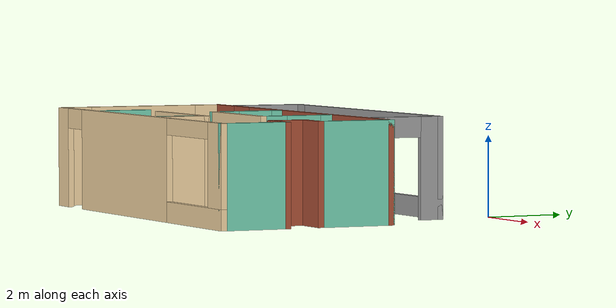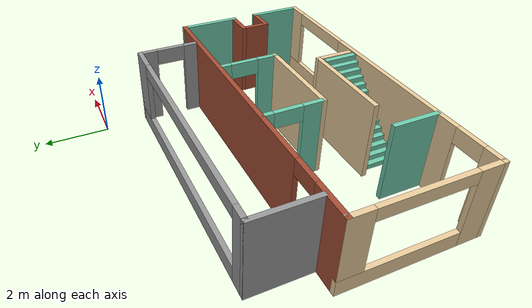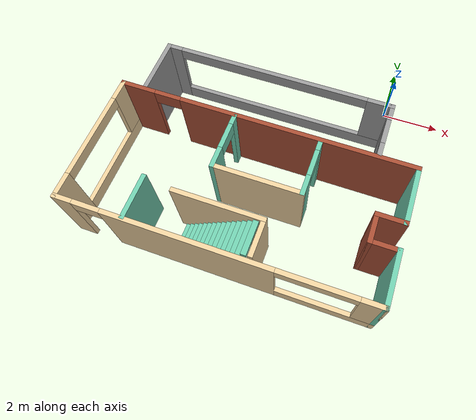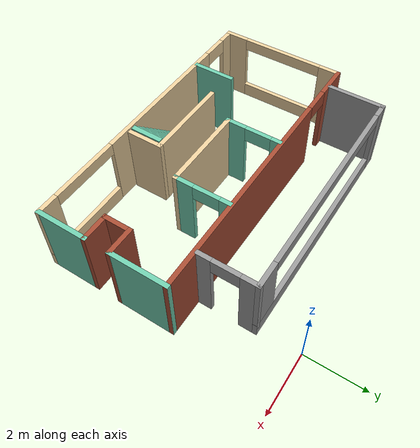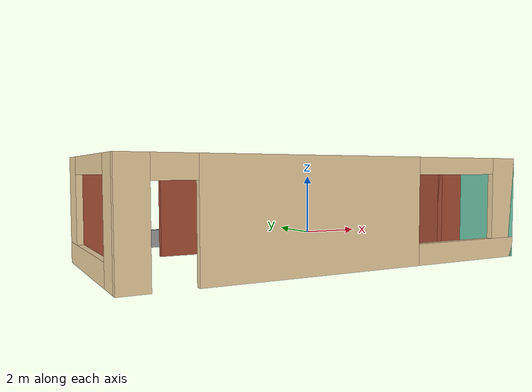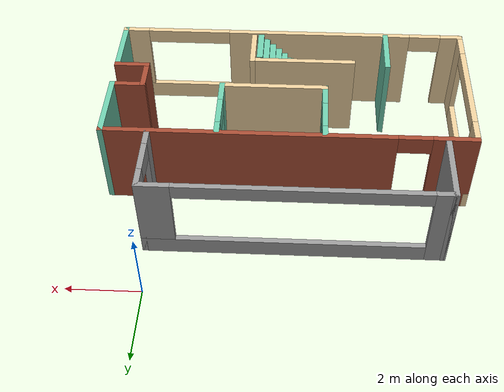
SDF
<?xml version='1.0'?>
<sdf version='1.6'>
  <model name='Untitled'>
    <pose frame=''>-3.57326 -4.56887 0 0 -0 0</pose>
    <link name='Stairs_0'>
      <visual name='Stairs_0_Visual_0'>
        <pose frame=''>-1.54693 -2.49688 0.083333 0 -0 1.5708</pose>
        <geometry>
          <box>
            <size>1.06865 0.174491 0.166667</size>
          </box>
        </geometry>
        <material>
          <script>
            <uri>file://media/materials/scripts/gazebo.material</uri>
            <name>Gazebo/Grey</name>
          </script>
          <ambient>0.435294 0.796078 0.67451 1</ambient>
        </material>
        <meta>
          <layer>0</layer>
        </meta>
      </visual>
      <collision name='Stairs_0_Collision_0'>
        <geometry>
          <box>
            <size>1.06865 0.174491 0.166667</size>
          </box>
        </geometry>
        <pose frame=''>-1.54693 -2.49688 0.083333 0 -0 1.5708</pose>
      </collision>
      <visual name='Stairs_0_Visual_1'>
        <pose frame=''>-1.37244 -2.49688 0.25 0 -0 1.5708</pose>
        <geometry>
          <box>
            <size>1.06865 0.174491 0.166667</size>
          </box>
        </geometry>
        <material>
          <script>
            <uri>file://media/materials/scripts/gazebo.material</uri>
            <name>Gazebo/Grey</name>
          </script>
          <ambient>0.435294 0.796078 0.67451 1</ambient>
        </material>
        <meta>
          <layer>0</layer>
        </meta>
      </visual>
      <collision name='Stairs_0_Collision_1'>
        <geometry>
          <box>
            <size>1.06865 0.174491 0.166667</size>
          </box>
        </geometry>
        <pose frame=''>-1.37244 -2.49688 0.25 0 -0 1.5708</pose>
      </collision>
      <visual name='Stairs_0_Visual_2'>
        <pose frame=''>-1.19795 -2.49688 0.416667 0 -0 1.5708</pose>
        <geometry>
          <box>
            <size>1.06865 0.174491 0.166667</size>
          </box>
        </geometry>
        <material>
          <script>
            <uri>file://media/materials/scripts/gazebo.material</uri>
            <name>Gazebo/Grey</name>
          </script>
          <ambient>0.435294 0.796078 0.67451 1</ambient>
        </material>
        <meta>
          <layer>0</layer>
        </meta>
      </visual>
      <collision name='Stairs_0_Collision_2'>
        <geometry>
          <box>
            <size>1.06865 0.174491 0.166667</size>
          </box>
        </geometry>
        <pose frame=''>-1.19795 -2.49688 0.416667 0 -0 1.5708</pose>
      </collision>
      <visual name='Stairs_0_Visual_3'>
        <pose frame=''>-1.02346 -2.49688 0.583333 0 -0 1.5708</pose>
        <geometry>
          <box>
            <size>1.06865 0.174491 0.166667</size>
          </box>
        </geometry>
        <material>
          <script>
            <uri>file://media/materials/scripts/gazebo.material</uri>
            <name>Gazebo/Grey</name>
          </script>
          <ambient>0.435294 0.796078 0.67451 1</ambient>
        </material>
        <meta>
          <layer>0</layer>
        </meta>
      </visual>
      <collision name='Stairs_0_Collision_3'>
        <geometry>
          <box>
            <size>1.06865 0.174491 0.166667</size>
          </box>
        </geometry>
        <pose frame=''>-1.02346 -2.49688 0.583333 0 -0 1.5708</pose>
      </collision>
      <visual name='Stairs_0_Visual_4'>
        <pose frame=''>-0.848965 -2.49688 0.75 0 -0 1.5708</pose>
        <geometry>
          <box>
            <size>1.06865 0.174491 0.166667</size>
          </box>
        </geometry>
        <material>
          <script>
            <uri>file://media/materials/scripts/gazebo.material</uri>
            <name>Gazebo/Grey</name>
          </script>
          <ambient>0.435294 0.796078 0.67451 1</ambient>
        </material>
        <meta>
          <layer>0</layer>
        </meta>
      </visual>
      <collision name='Stairs_0_Collision_4'>
        <geometry>
          <box>
            <size>1.06865 0.174491 0.166667</size>
          </box>
        </geometry>
        <pose frame=''>-0.848965 -2.49688 0.75 0 -0 1.5708</pose>
      </collision>
      <visual name='Stairs_0_Visual_5'>
        <pose frame=''>-0.674474 -2.49688 0.916667 0 -0 1.5708</pose>
        <geometry>
          <box>
            <size>1.06865 0.174491 0.166667</size>
          </box>
        </geometry>
        <material>
          <script>
            <uri>file://media/materials/scripts/gazebo.material</uri>
            <name>Gazebo/Grey</name>
          </script>
          <ambient>0.435294 0.796078 0.67451 1</ambient>
        </material>
        <meta>
          <layer>0</layer>
        </meta>
      </visual>
      <collision name='Stairs_0_Collision_5'>
        <geometry>
          <box>
            <size>1.06865 0.174491 0.166667</size>
          </box>
        </geometry>
        <pose frame=''>-0.674474 -2.49688 0.916667 0 -0 1.5708</pose>
      </collision>
      <visual name='Stairs_0_Visual_6'>
        <pose frame=''>-0.499983 -2.49688 1.08333 0 -0 1.5708</pose>
        <geometry>
          <box>
            <size>1.06865 0.174491 0.166667</size>
          </box>
        </geometry>
        <material>
          <script>
            <uri>file://media/materials/scripts/gazebo.material</uri>
            <name>Gazebo/Grey</name>
          </script>
          <ambient>0.435294 0.796078 0.67451 1</ambient>
        </material>
        <meta>
          <layer>0</layer>
        </meta>
      </visual>
      <collision name='Stairs_0_Collision_6'>
        <geometry>
          <box>
            <size>1.06865 0.174491 0.166667</size>
          </box>
        </geometry>
        <pose frame=''>-0.499983 -2.49688 1.08333 0 -0 1.5708</pose>
      </collision>
      <visual name='Stairs_0_Visual_7'>
        <pose frame=''>-0.325492 -2.49688 1.25 0 -0 1.5708</pose>
        <geometry>
          <box>
            <size>1.06865 0.174491 0.166667</size>
          </box>
        </geometry>
        <material>
          <script>
            <uri>file://media/materials/scripts/gazebo.material</uri>
            <name>Gazebo/Grey</name>
          </script>
          <ambient>0.435294 0.796078 0.67451 1</ambient>
        </material>
        <meta>
          <layer>0</layer>
        </meta>
      </visual>
      <collision name='Stairs_0_Collision_7'>
        <geometry>
          <box>
            <size>1.06865 0.174491 0.166667</size>
          </box>
        </geometry>
        <pose frame=''>-0.325492 -2.49688 1.25 0 -0 1.5708</pose>
      </collision>
      <visual name='Stairs_0_Visual_8'>
        <pose frame=''>-0.151001 -2.49688 1.41667 0 -0 1.5708</pose>
        <geometry>
          <box>
            <size>1.06865 0.174491 0.166667</size>
          </box>
        </geometry>
        <material>
          <script>
            <uri>file://media/materials/scripts/gazebo.material</uri>
            <name>Gazebo/Grey</name>
          </script>
          <ambient>0.435294 0.796078 0.67451 1</ambient>
        </material>
        <meta>
          <layer>0</layer>
        </meta>
      </visual>
      <collision name='Stairs_0_Collision_8'>
        <geometry>
          <box>
            <size>1.06865 0.174491 0.166667</size>
          </box>
        </geometry>
        <pose frame=''>-0.151001 -2.49688 1.41667 0 -0 1.5708</pose>
      </collision>
      <visual name='Stairs_0_Visual_9'>
        <pose frame=''>0.02349 -2.49688 1.58333 0 -0 1.5708</pose>
        <geometry>
          <box>
            <size>1.06865 0.174491 0.166667</size>
          </box>
        </geometry>
        <material>
          <script>
            <uri>file://media/materials/scripts/gazebo.material</uri>
            <name>Gazebo/Grey</name>
          </script>
          <ambient>0.435294 0.796078 0.67451 1</ambient>
        </material>
        <meta>
          <layer>0</layer>
        </meta>
      </visual>
      <collision name='Stairs_0_Collision_9'>
        <geometry>
          <box>
            <size>1.06865 0.174491 0.166667</size>
          </box>
        </geometry>
        <pose frame=''>0.02349 -2.49688 1.58333 0 -0 1.5708</pose>
      </collision>
      <visual name='Stairs_0_Visual_10'>
        <pose frame=''>0.197981 -2.49688 1.75 0 -0 1.5708</pose>
        <geometry>
          <box>
            <size>1.06865 0.174491 0.166667</size>
          </box>
        </geometry>
        <material>
          <script>
            <uri>file://media/materials/scripts/gazebo.material</uri>
            <name>Gazebo/Grey</name>
          </script>
          <ambient>0.435294 0.796078 0.67451 1</ambient>
        </material>
        <meta>
          <layer>0</layer>
        </meta>
      </visual>
      <collision name='Stairs_0_Collision_10'>
        <geometry>
          <box>
            <size>1.06865 0.174491 0.166667</size>
          </box>
        </geometry>
        <pose frame=''>0.197981 -2.49688 1.75 0 -0 1.5708</pose>
      </collision>
      <visual name='Stairs_0_Visual_11'>
        <pose frame=''>0.372472 -2.49688 1.91667 0 -0 1.5708</pose>
        <geometry>
          <box>
            <size>1.06865 0.174491 0.166667</size>
          </box>
        </geometry>
        <material>
          <script>
            <uri>file://media/materials/scripts/gazebo.material</uri>
            <name>Gazebo/Grey</name>
          </script>
          <ambient>0.435294 0.796078 0.67451 1</ambient>
        </material>
        <meta>
          <layer>0</layer>
        </meta>
      </visual>
      <collision name='Stairs_0_Collision_11'>
        <geometry>
          <box>
            <size>1.06865 0.174491 0.166667</size>
          </box>
        </geometry>
        <pose frame=''>0.372472 -2.49688 1.91667 0 -0 1.5708</pose>
      </collision>
      <visual name='Stairs_0_Visual_12'>
        <pose frame=''>0.546963 -2.49688 2.08333 0 -0 1.5708</pose>
        <geometry>
          <box>
            <size>1.06865 0.174491 0.166667</size>
          </box>
        </geometry>
        <material>
          <script>
            <uri>file://media/materials/scripts/gazebo.material</uri>
            <name>Gazebo/Grey</name>
          </script>
          <ambient>0.435294 0.796078 0.67451 1</ambient>
        </material>
        <meta>
          <layer>0</layer>
        </meta>
      </visual>
      <collision name='Stairs_0_Collision_12'>
        <geometry>
          <box>
            <size>1.06865 0.174491 0.166667</size>
          </box>
        </geometry>
        <pose frame=''>0.546963 -2.49688 2.08333 0 -0 1.5708</pose>
      </collision>
      <visual name='Stairs_0_Visual_13'>
        <pose frame=''>0.721454 -2.49688 2.25 0 -0 1.5708</pose>
        <geometry>
          <box>
            <size>1.06865 0.174491 0.166667</size>
          </box>
        </geometry>
        <material>
          <script>
            <uri>file://media/materials/scripts/gazebo.material</uri>
            <name>Gazebo/Grey</name>
          </script>
          <ambient>0.435294 0.796078 0.67451 1</ambient>
        </material>
        <meta>
          <layer>0</layer>
        </meta>
      </visual>
      <collision name='Stairs_0_Collision_13'>
        <geometry>
          <box>
            <size>1.06865 0.174491 0.166667</size>
          </box>
        </geometry>
        <pose frame=''>0.721454 -2.49688 2.25 0 -0 1.5708</pose>
      </collision>
      <visual name='Stairs_0_Visual_14'>
        <pose frame=''>0.895945 -2.49688 2.41667 0 -0 1.5708</pose>
        <geometry>
          <box>
            <size>1.06865 0.174491 0.166667</size>
          </box>
        </geometry>
        <material>
          <script>
            <uri>file://media/materials/scripts/gazebo.material</uri>
            <name>Gazebo/Grey</name>
          </script>
          <ambient>0.435294 0.796078 0.67451 1</ambient>
        </material>
        <meta>
          <layer>0</layer>
        </meta>
      </visual>
      <collision name='Stairs_0_Collision_14'>
        <geometry>
          <box>
            <size>1.06865 0.174491 0.166667</size>
          </box>
        </geometry>
        <pose frame=''>0.895945 -2.49688 2.41667 0 -0 1.5708</pose>
      </collision>
    </link>
    <link name='Wall_12'>
      <pose frame=''>-4.925 -0.974048 0 0 -0 1.5708</pose>
      <visual name='Wall_12_Visual_0'>
        <pose frame=''>-1.829 0 1.25 0 -0 0</pose>
        <geometry>
          <box>
            <size>0.84199 0.15 2.5</size>
          </box>
        </geometry>
        <material>
          <script>
            <uri>file://media/materials/scripts/gazebo.material</uri>
            <name>Gazebo/Grey</name>
          </script>
          <ambient>0.921569 0.807843 0.615686 1</ambient>
        </material>
        <meta>
          <layer>0</layer>
        </meta>
      </visual>
      <collision name='Wall_12_Collision_0'>
        <geometry>
          <box>
            <size>0.84199 0.15 2.5</size>
          </box>
        </geometry>
        <pose frame=''>-1.829 0 1.25 0 -0 0</pose>
      </collision>
      <visual name='Wall_12_Visual_1'>
        <pose frame=''>0.420995 0 0.25 0 -0 0</pose>
        <geometry>
          <box>
            <size>3.65801 0.15 0.5</size>
          </box>
        </geometry>
        <material>
          <script>
            <uri>file://media/materials/scripts/gazebo.material</uri>
            <name>Gazebo/Grey</name>
          </script>
          <ambient>0.921569 0.807843 0.615686 1</ambient>
        </material>
        <meta>
          <layer>0</layer>
        </meta>
      </visual>
      <collision name='Wall_12_Collision_1'>
        <geometry>
          <box>
            <size>3.65801 0.15 0.5</size>
          </box>
        </geometry>
        <pose frame=''>0.420995 0 0.25 0 -0 0</pose>
      </collision>
      <visual name='Wall_12_Visual_2'>
        <pose frame=''>1.86549 0 1.5 0 -0 0</pose>
        <geometry>
          <box>
            <size>0.76901 0.15 2</size>
          </box>
        </geometry>
        <material>
          <script>
            <uri>file://media/materials/scripts/gazebo.material</uri>
            <name>Gazebo/Grey</name>
          </script>
          <ambient>0.921569 0.807843 0.615686 1</ambient>
        </material>
        <meta>
          <layer>0</layer>
        </meta>
      </visual>
      <collision name='Wall_12_Collision_2'>
        <geometry>
          <box>
            <size>0.76901 0.15 2</size>
          </box>
        </geometry>
        <pose frame=''>1.86549 0 1.5 0 -0 0</pose>
      </collision>
      <visual name='Wall_12_Visual_3'>
        <pose frame=''>0.03649 0 2.3 0 -0 0</pose>
        <geometry>
          <box>
            <size>2.889 0.15 0.4</size>
          </box>
        </geometry>
        <material>
          <script>
            <uri>file://media/materials/scripts/gazebo.material</uri>
            <name>Gazebo/Grey</name>
          </script>
          <ambient>0.921569 0.807843 0.615686 1</ambient>
        </material>
        <meta>
          <layer>0</layer>
        </meta>
      </visual>
      <collision name='Wall_12_Collision_3'>
        <geometry>
          <box>
            <size>2.889 0.15 0.4</size>
          </box>
        </geometry>
        <pose frame=''>0.03649 0 2.3 0 -0 0</pose>
      </collision>
    </link>
    <link name='Wall_13'>
      <pose frame=''>0 1.20095 0 0 -0 0</pose>
      <visual name='Wall_13_Visual_0'>
        <pose frame=''>-4.38581 0 1.25 0 -0 0</pose>
        <geometry>
          <box>
            <size>1.22837 0.15 2.5</size>
          </box>
        </geometry>
        <material>
          <script>
            <uri>file://media/materials/scripts/gazebo.material</uri>
            <name>Gazebo/Bricks</name>
          </script>
          <ambient>0.996078 0.47451 0.0196078 1</ambient>
        </material>
        <meta>
          <layer>0</layer>
        </meta>
      </visual>
      <collision name='Wall_13_Collision_0'>
        <geometry>
          <box>
            <size>1.22837 0.15 2.5</size>
          </box>
        </geometry>
        <pose frame=''>-4.38581 0 1.25 0 -0 0</pose>
      </collision>
      <visual name='Wall_13_Visual_1'>
        <pose frame=''>1.06419 0 1.25 0 -0 0</pose>
        <geometry>
          <box>
            <size>7.87163 0.15 2.5</size>
          </box>
        </geometry>
        <material>
          <script>
            <uri>file://media/materials/scripts/gazebo.material</uri>
            <name>Gazebo/Bricks</name>
          </script>
          <ambient>0.996078 0.47451 0.0196078 1</ambient>
        </material>
        <meta>
          <layer>0</layer>
        </meta>
      </visual>
      <collision name='Wall_13_Collision_1'>
        <geometry>
          <box>
            <size>7.87163 0.15 2.5</size>
          </box>
        </geometry>
        <pose frame=''>1.06419 0 1.25 0 -0 0</pose>
      </collision>
      <visual name='Wall_13_Visual_2'>
        <pose frame=''>-3.32163 0 2.25 0 -0 0</pose>
        <geometry>
          <box>
            <size>0.9 0.15 0.5</size>
          </box>
        </geometry>
        <material>
          <script>
            <uri>file://media/materials/scripts/gazebo.material</uri>
            <name>Gazebo/Bricks</name>
          </script>
          <ambient>0.996078 0.47451 0.0196078 1</ambient>
        </material>
        <meta>
          <layer>0</layer>
        </meta>
      </visual>
      <collision name='Wall_13_Collision_2'>
        <geometry>
          <box>
            <size>0.9 0.15 0.5</size>
          </box>
        </geometry>
        <pose frame=''>-3.32163 0 2.25 0 -0 0</pose>
      </collision>
    </link>
    <link name='Wall_14'>
      <collision name='Wall_14_Collision'>
        <geometry>
          <box>
            <size>2 0.15 2.5</size>
          </box>
        </geometry>
        <pose frame=''>0 0 1.25 0 -0 0</pose>
      </collision>
      <visual name='Wall_14_Visual'>
        <pose frame=''>0 0 1.25 0 -0 0</pose>
        <geometry>
          <box>
            <size>2 0.15 2.5</size>
          </box>
        </geometry>
        <material>
          <script>
            <uri>file://media/materials/scripts/gazebo.material</uri>
            <name>Gazebo/Grey</name>
          </script>
          <ambient>0.435294 0.796078 0.67451 1</ambient>
        </material>
        <meta>
          <layer>0</layer>
        </meta>
      </visual>
      <pose frame=''>4.925 0.275952 0 0 0 -1.5708</pose>
    </link>
    <link name='Wall_15'>
      <collision name='Wall_15_Collision'>
        <geometry>
          <box>
            <size>1 0.15 2.5</size>
          </box>
        </geometry>
        <pose frame=''>0 0 1.25 0 -0 0</pose>
      </collision>
      <visual name='Wall_15_Visual'>
        <pose frame=''>0 0 1.25 0 -0 0</pose>
        <geometry>
          <box>
            <size>1 0.15 2.5</size>
          </box>
        </geometry>
        <material>
          <script>
            <uri>file://media/materials/scripts/gazebo.material</uri>
            <name>Gazebo/Bricks</name>
          </script>
          <ambient>1 1 1 1</ambient>
        </material>
        <meta>
          <layer>0</layer>
        </meta>
      </visual>
      <pose frame=''>4.5 -0.649048 0 0 -0 3.14159</pose>
    </link>
    <link name='Wall_16'>
      <collision name='Wall_16_Collision'>
        <geometry>
          <box>
            <size>1 0.15 2.5</size>
          </box>
        </geometry>
        <pose frame=''>0 0 1.25 0 -0 0</pose>
      </collision>
      <visual name='Wall_16_Visual'>
        <pose frame=''>0 0 1.25 0 -0 0</pose>
        <geometry>
          <box>
            <size>1 0.15 2.5</size>
          </box>
        </geometry>
        <material>
          <script>
            <uri>file://media/materials/scripts/gazebo.material</uri>
            <name>Gazebo/Bricks</name>
          </script>
          <ambient>1 1 1 1</ambient>
        </material>
        <meta>
          <layer>0</layer>
        </meta>
      </visual>
      <pose frame=''>4.075 -1.07405 0 0 0 -1.5708</pose>
    </link>
    <link name='Wall_17'>
      <collision name='Wall_17_Collision'>
        <geometry>
          <box>
            <size>1 0.15 2.5</size>
          </box>
        </geometry>
        <pose frame=''>0 0 1.25 0 -0 0</pose>
      </collision>
      <visual name='Wall_17_Visual'>
        <pose frame=''>0 0 1.25 0 -0 0</pose>
        <geometry>
          <box>
            <size>1 0.15 2.5</size>
          </box>
        </geometry>
        <material>
          <script>
            <uri>file://media/materials/scripts/gazebo.material</uri>
            <name>Gazebo/Bricks</name>
          </script>
          <ambient>1 1 1 1</ambient>
        </material>
        <meta>
          <layer>0</layer>
        </meta>
      </visual>
      <pose frame=''>4.5 -1.49905 0 0 -0 0</pose>
    </link>
    <link name='Wall_19'>
      <pose frame=''>0 -3.14905 0 0 -0 0</pose>
      <visual name='Wall_19_Visual_0'>
        <pose frame=''>-4.67753 0 1.25 0 -0 0</pose>
        <geometry>
          <box>
            <size>0.644934 0.15 2.5</size>
          </box>
        </geometry>
        <material>
          <script>
            <uri>file://media/materials/scripts/gazebo.material</uri>
            <name>Gazebo/Grey</name>
          </script>
          <ambient>0.921569 0.807843 0.615686 1</ambient>
        </material>
        <meta>
          <layer>0</layer>
        </meta>
      </visual>
      <collision name='Wall_19_Collision_0'>
        <geometry>
          <box>
            <size>0.644934 0.15 2.5</size>
          </box>
        </geometry>
        <pose frame=''>-4.67753 0 1.25 0 -0 0</pose>
      </collision>
      <visual name='Wall_19_Visual_1'>
        <pose frame=''>-0.800716 0 1.25 0 -0 0</pose>
        <geometry>
          <box>
            <size>5.3087 0.15 2.5</size>
          </box>
        </geometry>
        <material>
          <script>
            <uri>file://media/materials/scripts/gazebo.material</uri>
            <name>Gazebo/Grey</name>
          </script>
          <ambient>0.921569 0.807843 0.615686 1</ambient>
        </material>
        <meta>
          <layer>0</layer>
        </meta>
      </visual>
      <collision name='Wall_19_Collision_1'>
        <geometry>
          <box>
            <size>5.3087 0.15 2.5</size>
          </box>
        </geometry>
        <pose frame=''>-0.800716 0 1.25 0 -0 0</pose>
      </collision>
      <visual name='Wall_19_Visual_2'>
        <pose frame=''>3.42682 0 0.25 0 -0 0</pose>
        <geometry>
          <box>
            <size>3.14637 0.15 0.5</size>
          </box>
        </geometry>
        <material>
          <script>
            <uri>file://media/materials/scripts/gazebo.material</uri>
            <name>Gazebo/Grey</name>
          </script>
          <ambient>0.921569 0.807843 0.615686 1</ambient>
        </material>
        <meta>
          <layer>0</layer>
        </meta>
      </visual>
      <collision name='Wall_19_Collision_2'>
        <geometry>
          <box>
            <size>3.14637 0.15 0.5</size>
          </box>
        </geometry>
        <pose frame=''>3.42682 0 0.25 0 -0 0</pose>
      </collision>
      <visual name='Wall_19_Visual_3'>
        <pose frame=''>4.62132 0 1.5 0 -0 0</pose>
        <geometry>
          <box>
            <size>0.757366 0.15 2</size>
          </box>
        </geometry>
        <material>
          <script>
            <uri>file://media/materials/scripts/gazebo.material</uri>
            <name>Gazebo/Grey</name>
          </script>
          <ambient>0.921569 0.807843 0.615686 1</ambient>
        </material>
        <meta>
          <layer>0</layer>
        </meta>
      </visual>
      <collision name='Wall_19_Collision_3'>
        <geometry>
          <box>
            <size>0.757366 0.15 2</size>
          </box>
        </geometry>
        <pose frame=''>4.62132 0 1.5 0 -0 0</pose>
      </collision>
      <visual name='Wall_19_Visual_4'>
        <pose frame=''>-3.90507 0 2.25 0 -0 0</pose>
        <geometry>
          <box>
            <size>0.9 0.15 0.5</size>
          </box>
        </geometry>
        <material>
          <script>
            <uri>file://media/materials/scripts/gazebo.material</uri>
            <name>Gazebo/Grey</name>
          </script>
          <ambient>0.921569 0.807843 0.615686 1</ambient>
        </material>
        <meta>
          <layer>0</layer>
        </meta>
      </visual>
      <collision name='Wall_19_Collision_4'>
        <geometry>
          <box>
            <size>0.9 0.15 0.5</size>
          </box>
        </geometry>
        <pose frame=''>-3.90507 0 2.25 0 -0 0</pose>
      </collision>
      <visual name='Wall_19_Visual_5'>
        <pose frame=''>3.04813 0 2.3 0 -0 0</pose>
        <geometry>
          <box>
            <size>2.389 0.15 0.4</size>
          </box>
        </geometry>
        <material>
          <script>
            <uri>file://media/materials/scripts/gazebo.material</uri>
            <name>Gazebo/Grey</name>
          </script>
          <ambient>0.921569 0.807843 0.615686 1</ambient>
        </material>
        <meta>
          <layer>0</layer>
        </meta>
      </visual>
      <collision name='Wall_19_Collision_5'>
        <geometry>
          <box>
            <size>2.389 0.15 0.4</size>
          </box>
        </geometry>
        <pose frame=''>3.04813 0 2.3 0 -0 0</pose>
      </collision>
    </link>
    <link name='Wall_20'>
      <collision name='Wall_20_Collision'>
        <geometry>
          <box>
            <size>1.8 0.15 2.5</size>
          </box>
        </geometry>
        <pose frame=''>0 0 1.25 0 -0 0</pose>
      </collision>
      <visual name='Wall_20_Visual'>
        <pose frame=''>0 0 1.25 0 -0 0</pose>
        <geometry>
          <box>
            <size>1.8 0.15 2.5</size>
          </box>
        </geometry>
        <material>
          <script>
            <uri>file://media/materials/scripts/gazebo.material</uri>
            <name>Gazebo/Grey</name>
          </script>
          <ambient>0.435294 0.796078 0.67451 1</ambient>
        </material>
        <meta>
          <layer>0</layer>
        </meta>
      </visual>
      <pose frame=''>4.925 -2.32405 0 0 -0 1.5708</pose>
    </link>
    <link name='Wall_22'>
      <pose frame=''>1.87129 0.211634 0 0 0 -1.5708</pose>
      <visual name='Wall_22_Visual_0'>
        <pose frame=''>-0.800121 0 1.25 0 -0 0</pose>
        <geometry>
          <box>
            <size>0.399757 0.15 2.5</size>
          </box>
        </geometry>
        <material>
          <script>
            <uri>file://media/materials/scripts/gazebo.material</uri>
            <name>Gazebo/Grey</name>
          </script>
          <ambient>0.435294 0.796078 0.67451 1</ambient>
        </material>
        <meta>
          <layer>0</layer>
        </meta>
      </visual>
      <collision name='Wall_22_Collision_0'>
        <geometry>
          <box>
            <size>0.399757 0.15 2.5</size>
          </box>
        </geometry>
        <pose frame=''>-0.800121 0 1.25 0 -0 0</pose>
      </collision>
      <visual name='Wall_22_Visual_1'>
        <pose frame=''>0.649879 0 1.25 0 -0 0</pose>
        <geometry>
          <box>
            <size>0.700243 0.15 2.5</size>
          </box>
        </geometry>
        <material>
          <script>
            <uri>file://media/materials/scripts/gazebo.material</uri>
            <name>Gazebo/Grey</name>
          </script>
          <ambient>0.435294 0.796078 0.67451 1</ambient>
        </material>
        <meta>
          <layer>0</layer>
        </meta>
      </visual>
      <collision name='Wall_22_Collision_1'>
        <geometry>
          <box>
            <size>0.700243 0.15 2.5</size>
          </box>
        </geometry>
        <pose frame=''>0.649879 0 1.25 0 -0 0</pose>
      </collision>
      <visual name='Wall_22_Visual_2'>
        <pose frame=''>-0.150243 0 2.25 0 -0 0</pose>
        <geometry>
          <box>
            <size>0.9 0.15 0.5</size>
          </box>
        </geometry>
        <material>
          <script>
            <uri>file://media/materials/scripts/gazebo.material</uri>
            <name>Gazebo/Grey</name>
          </script>
          <ambient>0.435294 0.796078 0.67451 1</ambient>
        </material>
        <meta>
          <layer>0</layer>
        </meta>
      </visual>
      <collision name='Wall_22_Collision_2'>
        <geometry>
          <box>
            <size>0.9 0.15 0.5</size>
          </box>
        </geometry>
        <pose frame=''>-0.150243 0 2.25 0 -0 0</pose>
      </collision>
    </link>
    <link name='Wall_23'>
      <collision name='Wall_23_Collision'>
        <geometry>
          <box>
            <size>3 0.15 2.5</size>
          </box>
        </geometry>
        <pose frame=''>0 0 1.25 0 -0 0</pose>
      </collision>
      <visual name='Wall_23_Visual'>
        <pose frame=''>0 0 1.25 0 -0 0</pose>
        <geometry>
          <box>
            <size>3 0.15 2.5</size>
          </box>
        </geometry>
        <material>
          <script>
            <uri>file://media/materials/scripts/gazebo.material</uri>
            <name>Gazebo/Grey</name>
          </script>
          <ambient>0.921569 0.807843 0.615686 1</ambient>
        </material>
        <meta>
          <layer>0</layer>
        </meta>
      </visual>
      <pose frame=''>0.446288 -0.713366 0 0 -0 3.14159</pose>
    </link>
    <link name='Wall_24'>
      <pose frame=''>-0.978712 0.211634 0 0 -0 1.5708</pose>
      <visual name='Wall_24_Visual_0'>
        <pose frame=''>-0.635168 0 1.25 0 -0 0</pose>
        <geometry>
          <box>
            <size>0.729664 0.15 2.5</size>
          </box>
        </geometry>
        <material>
          <script>
            <uri>file://media/materials/scripts/gazebo.material</uri>
            <name>Gazebo/Grey</name>
          </script>
          <ambient>0.435294 0.796078 0.67451 1</ambient>
        </material>
        <meta>
          <layer>0</layer>
        </meta>
      </visual>
      <collision name='Wall_24_Collision_0'>
        <geometry>
          <box>
            <size>0.729664 0.15 2.5</size>
          </box>
        </geometry>
        <pose frame=''>-0.635168 0 1.25 0 -0 0</pose>
      </collision>
      <visual name='Wall_24_Visual_1'>
        <pose frame=''>0.814832 0 1.25 0 -0 0</pose>
        <geometry>
          <box>
            <size>0.370336 0.15 2.5</size>
          </box>
        </geometry>
        <material>
          <script>
            <uri>file://media/materials/scripts/gazebo.material</uri>
            <name>Gazebo/Grey</name>
          </script>
          <ambient>0.435294 0.796078 0.67451 1</ambient>
        </material>
        <meta>
          <layer>0</layer>
        </meta>
      </visual>
      <collision name='Wall_24_Collision_1'>
        <geometry>
          <box>
            <size>0.370336 0.15 2.5</size>
          </box>
        </geometry>
        <pose frame=''>0.814832 0 1.25 0 -0 0</pose>
      </collision>
      <visual name='Wall_24_Visual_2'>
        <pose frame=''>0.179664 0 2.25 0 -0 0</pose>
        <geometry>
          <box>
            <size>0.9 0.15 0.5</size>
          </box>
        </geometry>
        <material>
          <script>
            <uri>file://media/materials/scripts/gazebo.material</uri>
            <name>Gazebo/Grey</name>
          </script>
          <ambient>0.435294 0.796078 0.67451 1</ambient>
        </material>
        <meta>
          <layer>0</layer>
        </meta>
      </visual>
      <collision name='Wall_24_Collision_2'>
        <geometry>
          <box>
            <size>0.9 0.15 0.5</size>
          </box>
        </geometry>
        <pose frame=''>0.179664 0 2.25 0 -0 0</pose>
      </collision>
    </link>
    <link name='Wall_26'>
      <collision name='Wall_26_Collision'>
        <geometry>
          <box>
            <size>1.5 0.15 2.5</size>
          </box>
        </geometry>
        <pose frame=''>0 0 1.25 0 -0 0</pose>
      </collision>
      <visual name='Wall_26_Visual'>
        <pose frame=''>0 0 1.25 0 -0 0</pose>
        <geometry>
          <box>
            <size>1.5 0.15 2.5</size>
          </box>
        </geometry>
        <material>
          <script>
            <uri>file://media/materials/scripts/gazebo.material</uri>
            <name>Gazebo/Grey</name>
          </script>
          <ambient>0.435294 0.796078 0.67451 1</ambient>
        </material>
        <meta>
          <layer>0</layer>
        </meta>
      </visual>
      <pose frame=''>-2.74783 -2.41521 0 0 -0 1.5708</pose>
    </link>
    <link name='Wall_28'>
      <collision name='Wall_28_Collision'>
        <geometry>
          <box>
            <size>3 0.15 2.5</size>
          </box>
        </geometry>
        <pose frame=''>0 0 1.25 0 -0 0</pose>
      </collision>
      <visual name='Wall_28_Visual'>
        <pose frame=''>0 0 1.25 0 -0 0</pose>
        <geometry>
          <box>
            <size>3 0.15 2.5</size>
          </box>
        </geometry>
        <material>
          <script>
            <uri>file://media/materials/scripts/gazebo.material</uri>
            <name>Gazebo/Grey</name>
          </script>
          <ambient>0.921569 0.807843 0.615686 1</ambient>
        </material>
        <meta>
          <layer>0</layer>
        </meta>
      </visual>
      <pose frame=''>-0.328469 -1.85452 0 0 -0 3.14159</pose>
    </link>
    <link name='Wall_30'>
      <collision name='Wall_30_Collision'>
        <geometry>
          <box>
            <size>1.25 0.15 2.5</size>
          </box>
        </geometry>
        <pose frame=''>0 0 1.25 0 -0 0</pose>
      </collision>
      <visual name='Wall_30_Visual'>
        <pose frame=''>0 0 1.25 0 -0 0</pose>
        <geometry>
          <box>
            <size>1.25 0.15 2.5</size>
          </box>
        </geometry>
        <material>
          <script>
            <uri>file://media/materials/scripts/gazebo.material</uri>
            <name>Gazebo/Grey</name>
          </script>
          <ambient>0.921569 0.807843 0.615686 1</ambient>
        </material>
        <meta>
          <layer>0</layer>
        </meta>
      </visual>
      <pose frame=''>1.09653 -2.40452 0 0 0 -1.5708</pose>
    </link>
    <link name='Wall_33'>
      <collision name='Wall_33_Collision'>
        <geometry>
          <box>
            <size>2 0.15 2.5</size>
          </box>
        </geometry>
        <pose frame=''>0 0 1.25 0 -0 0</pose>
      </collision>
      <visual name='Wall_33_Visual'>
        <pose frame=''>0 0 1.25 0 -0 0</pose>
        <geometry>
          <box>
            <size>2 0.15 2.5</size>
          </box>
        </geometry>
        <material>
          <script>
            <uri>file://media/materials/scripts/gazebo.material</uri>
            <name>Gazebo/Grey</name>
          </script>
          <ambient>1 1 1 1</ambient>
        </material>
        <meta>
          <layer>0</layer>
        </meta>
      </visual>
      <pose frame=''>-4.16467 2.22405 0 0 -0 1.5708</pose>
    </link>
    <link name='Wall_34'>
      <collision name='Wall_34_Collision'>
        <geometry>
          <box>
            <size>0.15 0.15 2.5</size>
          </box>
        </geometry>
        <pose frame=''>0 0 1.25 0 -0 0</pose>
      </collision>
      <visual name='Wall_34_Visual'>
        <pose frame=''>0 0 1.25 0 -0 0</pose>
        <geometry>
          <box>
            <size>0.15 0.15 2.5</size>
          </box>
        </geometry>
        <material>
          <script>
            <uri>file://media/materials/scripts/gazebo.material</uri>
            <name>Gazebo/Grey</name>
          </script>
          <ambient>1 1 1 1</ambient>
        </material>
        <meta>
          <layer>0</layer>
        </meta>
      </visual>
      <pose frame=''>-4.16467 3.14905 0 0 -0 0</pose>
    </link>
    <link name='Wall_35'>
      <pose frame=''>-0.239665 3.14905 0 0 -0 0</pose>
      <visual name='Wall_35_Visual_0'>
        <pose frame=''>-3.71504 0 1.25 0 -0 0</pose>
        <geometry>
          <box>
            <size>0.569918 0.15 2.5</size>
          </box>
        </geometry>
        <material>
          <script>
            <uri>file://media/materials/scripts/gazebo.material</uri>
            <name>Gazebo/Grey</name>
          </script>
          <ambient>1 1 1 1</ambient>
        </material>
        <meta>
          <layer>0</layer>
        </meta>
      </visual>
      <collision name='Wall_35_Collision_0'>
        <geometry>
          <box>
            <size>0.569918 0.15 2.5</size>
          </box>
        </geometry>
        <pose frame=''>-3.71504 0 1.25 0 -0 0</pose>
      </collision>
      <visual name='Wall_35_Visual_1'>
        <pose frame=''>0.284959 0 0.25 0 -0 0</pose>
        <geometry>
          <box>
            <size>7.43008 0.15 0.5</size>
          </box>
        </geometry>
        <material>
          <script>
            <uri>file://media/materials/scripts/gazebo.material</uri>
            <name>Gazebo/Grey</name>
          </script>
          <ambient>1 1 1 1</ambient>
        </material>
        <meta>
          <layer>0</layer>
        </meta>
      </visual>
      <collision name='Wall_35_Collision_1'>
        <geometry>
          <box>
            <size>7.43008 0.15 0.5</size>
          </box>
        </geometry>
        <pose frame=''>0.284959 0 0.25 0 -0 0</pose>
      </collision>
      <visual name='Wall_35_Visual_2'>
        <pose frame=''>3.54481 0 1.5 0 -0 0</pose>
        <geometry>
          <box>
            <size>0.910388 0.15 2</size>
          </box>
        </geometry>
        <material>
          <script>
            <uri>file://media/materials/scripts/gazebo.material</uri>
            <name>Gazebo/Grey</name>
          </script>
          <ambient>1 1 1 1</ambient>
        </material>
        <meta>
          <layer>0</layer>
        </meta>
      </visual>
      <collision name='Wall_35_Collision_2'>
        <geometry>
          <box>
            <size>0.910388 0.15 2</size>
          </box>
        </geometry>
        <pose frame=''>3.54481 0 1.5 0 -0 0</pose>
      </collision>
      <visual name='Wall_35_Visual_3'>
        <pose frame=''>-0.170235 0 2.3 0 -0 0</pose>
        <geometry>
          <box>
            <size>6.51969 0.15 0.4</size>
          </box>
        </geometry>
        <material>
          <script>
            <uri>file://media/materials/scripts/gazebo.material</uri>
            <name>Gazebo/Grey</name>
          </script>
          <ambient>1 1 1 1</ambient>
        </material>
        <meta>
          <layer>0</layer>
        </meta>
      </visual>
      <collision name='Wall_35_Collision_3'>
        <geometry>
          <box>
            <size>6.51969 0.15 0.4</size>
          </box>
        </geometry>
        <pose frame=''>-0.170235 0 2.3 0 -0 0</pose>
      </collision>
    </link>
    <link name='Wall_36'>
      <pose frame=''>3.68533 2.22405 0 0 0 -1.5708</pose>
      <visual name='Wall_36_Visual_0'>
        <pose frame=''>-0.696989 0 1.25 0 -0 0</pose>
        <geometry>
          <box>
            <size>0.606022 0.15 2.5</size>
          </box>
        </geometry>
        <material>
          <script>
            <uri>file://media/materials/scripts/gazebo.material</uri>
            <name>Gazebo/Grey</name>
          </script>
          <ambient>1 1 1 1</ambient>
        </material>
        <meta>
          <layer>0</layer>
        </meta>
      </visual>
      <collision name='Wall_36_Collision_0'>
        <geometry>
          <box>
            <size>0.606022 0.15 2.5</size>
          </box>
        </geometry>
        <pose frame=''>-0.696989 0 1.25 0 -0 0</pose>
      </collision>
      <visual name='Wall_36_Visual_1'>
        <pose frame=''>0.753011 0 1.25 0 -0 0</pose>
        <geometry>
          <box>
            <size>0.493978 0.15 2.5</size>
          </box>
        </geometry>
        <material>
          <script>
            <uri>file://media/materials/scripts/gazebo.material</uri>
            <name>Gazebo/Grey</name>
          </script>
          <ambient>1 1 1 1</ambient>
        </material>
        <meta>
          <layer>0</layer>
        </meta>
      </visual>
      <collision name='Wall_36_Collision_1'>
        <geometry>
          <box>
            <size>0.493978 0.15 2.5</size>
          </box>
        </geometry>
        <pose frame=''>0.753011 0 1.25 0 -0 0</pose>
      </collision>
      <visual name='Wall_36_Visual_2'>
        <pose frame=''>0.056022 0 2.25 0 -0 0</pose>
        <geometry>
          <box>
            <size>0.9 0.15 0.5</size>
          </box>
        </geometry>
        <material>
          <script>
            <uri>file://media/materials/scripts/gazebo.material</uri>
            <name>Gazebo/Grey</name>
          </script>
          <ambient>1 1 1 1</ambient>
        </material>
        <meta>
          <layer>0</layer>
        </meta>
      </visual>
      <collision name='Wall_36_Collision_2'>
        <geometry>
          <box>
            <size>0.9 0.15 0.5</size>
          </box>
        </geometry>
        <pose frame=''>0.056022 0 2.25 0 -0 0</pose>
      </collision>
    </link>
    <static>1</static>
  </model>
</sdf>
